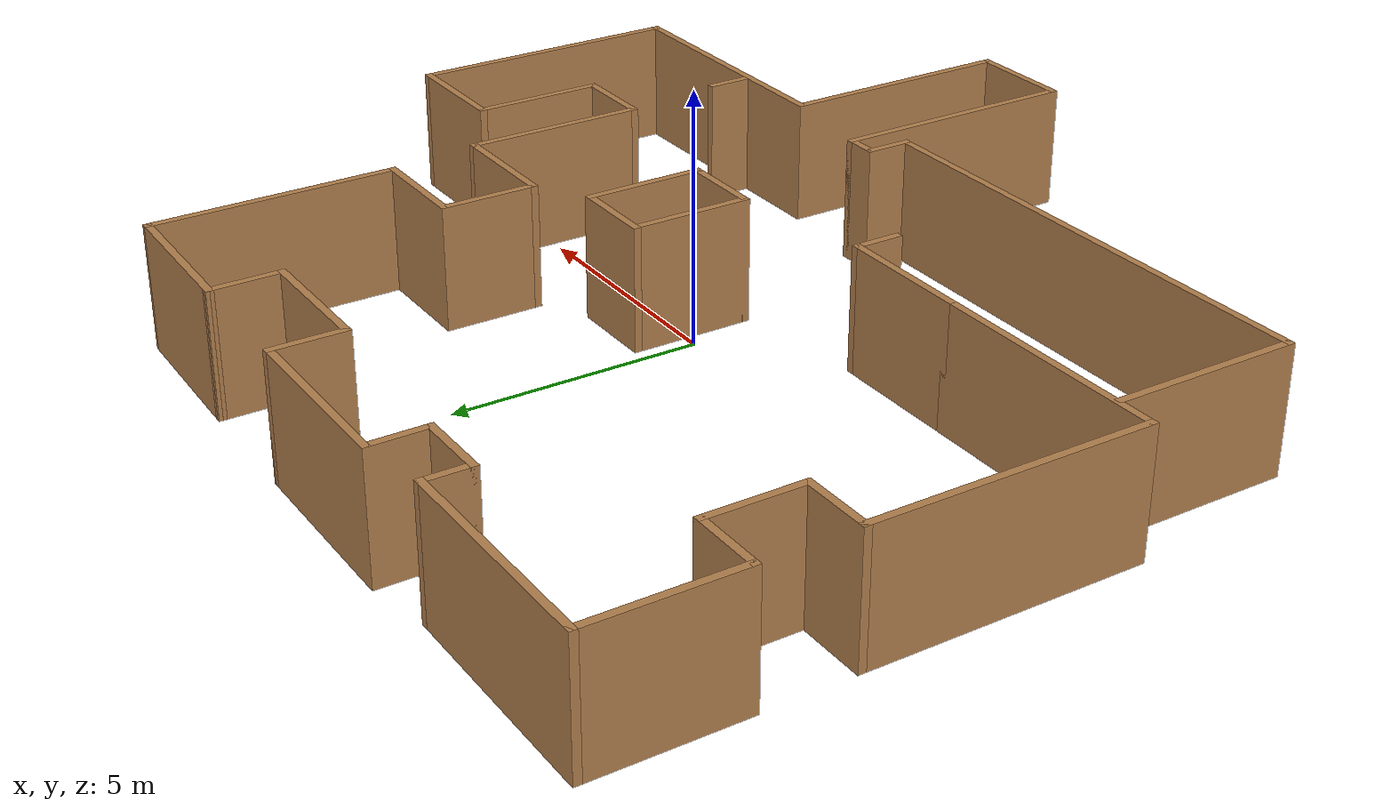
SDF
<?xml version='1.0'?>
<sdf version='1.6'>
  <model name='map_102'>
    <pose frame=''>-0.290953 -0.679758 0 0 -0 0</pose>
    <link name='Wall_21'>
      <collision name='Wall_21_Collision'>
        <geometry>
          <box>
            <size>2 0.15 2.5</size>
          </box>
        </geometry>
        <pose frame=''>0 0 1.25 0 -0 0</pose>
      </collision>
      <visual name='Wall_21_Visual'>
        <pose frame=''>0 0 1.25 0 -0 0</pose>
        <geometry>
          <box>
            <size>2 0.15 2.5</size>
          </box>
        </geometry>
        <material>
          <script>
            <uri>file://media/materials/scripts/gazebo.material</uri>
            <name>Gazebo/Wood</name>
          </script>
          <ambient>1 1 1 1</ambient>
        </material>
        <meta>
          <layer>0</layer>
        </meta>
      </visual>
      <pose frame=''>-8.23307 5.08367 0 0 -0 -1.5708</pose>
    </link>
    <link name='Wall_22'>
      <collision name='Wall_22_Collision'>
        <geometry>
          <box>
            <size>1.5 0.15 2.5</size>
          </box>
        </geometry>
        <pose frame=''>0 0 1.25 0 -0 0</pose>
      </collision>
      <visual name='Wall_22_Visual'>
        <pose frame=''>0 0 1.25 0 -0 0</pose>
        <geometry>
          <box>
            <size>1.5 0.15 2.5</size>
          </box>
        </geometry>
        <material>
          <script>
            <uri>file://media/materials/scripts/gazebo.material</uri>
            <name>Gazebo/Wood</name>
          </script>
          <ambient>1 1 1 1</ambient>
        </material>
        <meta>
          <layer>0</layer>
        </meta>
      </visual>
      <pose frame=''>-8.90807 4.15867 0 0 -0 3.14159</pose>
    </link>
    <link name='Wall_23'>
      <collision name='Wall_23_Collision'>
        <geometry>
          <box>
            <size>5.5 0.15 2.5</size>
          </box>
        </geometry>
        <pose frame=''>0 0 1.25 0 -0 0</pose>
      </collision>
      <visual name='Wall_23_Visual'>
        <pose frame=''>0 0 1.25 0 -0 0</pose>
        <geometry>
          <box>
            <size>5.5 0.15 2.5</size>
          </box>
        </geometry>
        <material>
          <script>
            <uri>file://media/materials/scripts/gazebo.material</uri>
            <name>Gazebo/Wood</name>
          </script>
          <ambient>1 1 1 1</ambient>
        </material>
        <meta>
          <layer>0</layer>
        </meta>
      </visual>
      <pose frame=''>-9.58307 1.48367 0 0 -0 -1.5708</pose>
    </link>
    <link name='Wall_24'>
      <collision name='Wall_24_Collision'>
        <geometry>
          <box>
            <size>5 0.15 2.5</size>
          </box>
        </geometry>
        <pose frame=''>0 0 1.25 0 -0 0</pose>
      </collision>
      <visual name='Wall_24_Visual'>
        <pose frame=''>0 0 1.25 0 -0 0</pose>
        <geometry>
          <box>
            <size>5 0.15 2.5</size>
          </box>
        </geometry>
        <material>
          <script>
            <uri>file://media/materials/scripts/gazebo.material</uri>
            <name>Gazebo/Wood</name>
          </script>
          <ambient>1 1 1 1</ambient>
        </material>
        <meta>
          <layer>0</layer>
        </meta>
      </visual>
      <pose frame=''>-7.15807 -1.19133 0 0 -0 0</pose>
    </link>
    <link name='Wall_28'>
      <collision name='Wall_28_Collision'>
        <geometry>
          <box>
            <size>3.75 0.15 2.5</size>
          </box>
        </geometry>
        <pose frame=''>0 0 1.25 0 -0 0</pose>
      </collision>
      <visual name='Wall_28_Visual'>
        <pose frame=''>0 0 1.25 0 -0 0</pose>
        <geometry>
          <box>
            <size>3.75 0.15 2.5</size>
          </box>
        </geometry>
        <material>
          <script>
            <uri>file://media/materials/scripts/gazebo.material</uri>
            <name>Gazebo/Wood</name>
          </script>
          <ambient>1 1 1 1</ambient>
        </material>
        <meta>
          <layer>0</layer>
        </meta>
      </visual>
      <pose frame=''>-8.81693 -3.06034 0 0 -0 -1.5708</pose>
    </link>
    <link name='Wall_38'>
      <collision name='Wall_38_Collision'>
        <geometry>
          <box>
            <size>10.25 0.15 2.5</size>
          </box>
        </geometry>
        <pose frame=''>0 0 1.25 0 -0 0</pose>
      </collision>
      <visual name='Wall_38_Visual'>
        <pose frame=''>0 0 1.25 0 -0 0</pose>
        <geometry>
          <box>
            <size>10.25 0.15 2.5</size>
          </box>
        </geometry>
        <material>
          <script>
            <uri>file://media/materials/scripts/gazebo.material</uri>
            <name>Gazebo/Wood</name>
          </script>
          <ambient>1 1 1 1</ambient>
        </material>
        <meta>
          <layer>0</layer>
        </meta>
      </visual>
      <pose frame=''>-3.76693 -4.86034 0 0 -0 0</pose>
    </link>
    <link name='Wall_39'>
      <collision name='Wall_39_Collision'>
        <geometry>
          <box>
            <size>1 0.15 2.5</size>
          </box>
        </geometry>
        <pose frame=''>0 0 1.25 0 -0 0</pose>
      </collision>
      <visual name='Wall_39_Visual'>
        <pose frame=''>0 0 1.25 0 -0 0</pose>
        <geometry>
          <box>
            <size>1 0.15 2.5</size>
          </box>
        </geometry>
        <material>
          <script>
            <uri>file://media/materials/scripts/gazebo.material</uri>
            <name>Gazebo/Wood</name>
          </script>
          <ambient>1 1 1 1</ambient>
        </material>
        <meta>
          <layer>0</layer>
        </meta>
      </visual>
      <pose frame=''>1.28307 -4.43534 0 0 -0 1.5708</pose>
    </link>
    <link name='Wall_40'>
      <collision name='Wall_40_Collision'>
        <geometry>
          <box>
            <size>0.75 0.15 2.5</size>
          </box>
        </geometry>
        <pose frame=''>0 0 1.25 0 -0 0</pose>
      </collision>
      <visual name='Wall_40_Visual'>
        <pose frame=''>0 0 1.25 0 -0 0</pose>
        <geometry>
          <box>
            <size>0.75 0.15 2.5</size>
          </box>
        </geometry>
        <material>
          <script>
            <uri>file://media/materials/scripts/gazebo.material</uri>
            <name>Gazebo/Wood</name>
          </script>
          <ambient>1 1 1 1</ambient>
        </material>
        <meta>
          <layer>0</layer>
        </meta>
      </visual>
      <pose frame=''>1.58307 -4.01034 0 0 -0 0</pose>
    </link>
    <link name='Wall_41'>
      <collision name='Wall_41_Collision'>
        <geometry>
          <box>
            <size>5.25 0.15 2.5</size>
          </box>
        </geometry>
        <pose frame=''>0 0 1.25 0 -0 0</pose>
      </collision>
      <visual name='Wall_41_Visual'>
        <pose frame=''>0 0 1.25 0 -0 0</pose>
        <geometry>
          <box>
            <size>5.25 0.15 2.5</size>
          </box>
        </geometry>
        <material>
          <script>
            <uri>file://media/materials/scripts/gazebo.material</uri>
            <name>Gazebo/Wood</name>
          </script>
          <ambient>1 1 1 1</ambient>
        </material>
        <meta>
          <layer>0</layer>
        </meta>
      </visual>
      <pose frame=''>1.88307 -6.56034 0 0 -0 -1.5708</pose>
    </link>
    <link name='Wall_42'>
      <collision name='Wall_42_Collision'>
        <geometry>
          <box>
            <size>2.25 0.15 2.5</size>
          </box>
        </geometry>
        <pose frame=''>0 0 1.25 0 -0 0</pose>
      </collision>
      <visual name='Wall_42_Visual'>
        <pose frame=''>0 0 1.25 0 -0 0</pose>
        <geometry>
          <box>
            <size>2.25 0.15 2.5</size>
          </box>
        </geometry>
        <material>
          <script>
            <uri>file://media/materials/scripts/gazebo.material</uri>
            <name>Gazebo/Wood</name>
          </script>
          <ambient>1 1 1 1</ambient>
        </material>
        <meta>
          <layer>0</layer>
        </meta>
      </visual>
      <pose frame=''>2.93307 -9.11034 0 0 -0 0</pose>
    </link>
    <link name='Wall_43'>
      <collision name='Wall_43_Collision'>
        <geometry>
          <box>
            <size>5 0.15 2.5</size>
          </box>
        </geometry>
        <pose frame=''>0 0 1.25 0 -0 0</pose>
      </collision>
      <visual name='Wall_43_Visual'>
        <pose frame=''>0 0 1.25 0 -0 0</pose>
        <geometry>
          <box>
            <size>5 0.15 2.5</size>
          </box>
        </geometry>
        <material>
          <script>
            <uri>file://media/materials/scripts/gazebo.material</uri>
            <name>Gazebo/Wood</name>
          </script>
          <ambient>1 1 1 1</ambient>
        </material>
        <meta>
          <layer>0</layer>
        </meta>
      </visual>
      <pose frame=''>3.98307 -6.68534 0 0 -0 1.5708</pose>
    </link>
    <link name='Wall_44'>
      <collision name='Wall_44_Collision'>
        <geometry>
          <box>
            <size>5.75 0.15 2.5</size>
          </box>
        </geometry>
        <pose frame=''>0 0 1.25 0 -0 0</pose>
      </collision>
      <visual name='Wall_44_Visual'>
        <pose frame=''>0 0 1.25 0 -0 0</pose>
        <geometry>
          <box>
            <size>5.75 0.15 2.5</size>
          </box>
        </geometry>
        <material>
          <script>
            <uri>file://media/materials/scripts/gazebo.material</uri>
            <name>Gazebo/Wood</name>
          </script>
          <ambient>1 1 1 1</ambient>
        </material>
        <meta>
          <layer>0</layer>
        </meta>
      </visual>
      <pose frame=''>6.78307 -4.26034 0 0 -0 0</pose>
    </link>
    <link name='Wall_46'>
      <collision name='Wall_46_Collision'>
        <geometry>
          <box>
            <size>5.75 0.15 2.5</size>
          </box>
        </geometry>
        <pose frame=''>0 0 1.25 0 -0 0</pose>
      </collision>
      <visual name='Wall_46_Visual'>
        <pose frame=''>0 0 1.25 0 -0 0</pose>
        <geometry>
          <box>
            <size>5.75 0.15 2.5</size>
          </box>
        </geometry>
        <material>
          <script>
            <uri>file://media/materials/scripts/gazebo.material</uri>
            <name>Gazebo/Wood</name>
          </script>
          <ambient>1 1 1 1</ambient>
        </material>
        <meta>
          <layer>0</layer>
        </meta>
      </visual>
      <pose frame=''>9.58307 -1.46034 0 0 -0 1.5708</pose>
    </link>
    <link name='Wall_47'>
      <collision name='Wall_47_Collision'>
        <geometry>
          <box>
            <size>2.5 0.15 2.5</size>
          </box>
        </geometry>
        <pose frame=''>0 0 1.25 0 -0 0</pose>
      </collision>
      <visual name='Wall_47_Visual'>
        <pose frame=''>0 0 1.25 0 -0 0</pose>
        <geometry>
          <box>
            <size>2.5 0.15 2.5</size>
          </box>
        </geometry>
        <material>
          <script>
            <uri>file://media/materials/scripts/gazebo.material</uri>
            <name>Gazebo/Wood</name>
          </script>
          <ambient>1 1 1 1</ambient>
        </material>
        <meta>
          <layer>0</layer>
        </meta>
      </visual>
      <pose frame=''>8.40807 1.33966 0 0 -0 3.14159</pose>
    </link>
    <link name='Wall_48'>
      <collision name='Wall_48_Collision'>
        <geometry>
          <box>
            <size>2.75 0.15 2.5</size>
          </box>
        </geometry>
        <pose frame=''>0 0 1.25 0 -0 0</pose>
      </collision>
      <visual name='Wall_48_Visual'>
        <pose frame=''>0 0 1.25 0 -0 0</pose>
        <geometry>
          <box>
            <size>2.75 0.15 2.5</size>
          </box>
        </geometry>
        <material>
          <script>
            <uri>file://media/materials/scripts/gazebo.material</uri>
            <name>Gazebo/Wood</name>
          </script>
          <ambient>1 1 1 1</ambient>
        </material>
        <meta>
          <layer>0</layer>
        </meta>
      </visual>
      <pose frame=''>7.23307 0.039658 0 0 -0 -1.5708</pose>
    </link>
    <link name='Wall_49'>
      <collision name='Wall_49_Collision'>
        <geometry>
          <box>
            <size>1.75 0.15 2.5</size>
          </box>
        </geometry>
        <pose frame=''>0 0 1.25 0 -0 0</pose>
      </collision>
      <visual name='Wall_49_Visual'>
        <pose frame=''>0 0 1.25 0 -0 0</pose>
        <geometry>
          <box>
            <size>1.75 0.15 2.5</size>
          </box>
        </geometry>
        <material>
          <script>
            <uri>file://media/materials/scripts/gazebo.material</uri>
            <name>Gazebo/Wood</name>
          </script>
          <ambient>1 1 1 1</ambient>
        </material>
        <meta>
          <layer>0</layer>
        </meta>
      </visual>
      <pose frame=''>6.43307 -1.26034 0 0 -0 3.14159</pose>
    </link>
    <link name='Wall_50'>
      <collision name='Wall_50_Collision'>
        <geometry>
          <box>
            <size>3.75 0.15 2.5</size>
          </box>
        </geometry>
        <pose frame=''>0 0 1.25 0 -0 0</pose>
      </collision>
      <visual name='Wall_50_Visual'>
        <pose frame=''>0 0 1.25 0 -0 0</pose>
        <geometry>
          <box>
            <size>3.75 0.15 2.5</size>
          </box>
        </geometry>
        <material>
          <script>
            <uri>file://media/materials/scripts/gazebo.material</uri>
            <name>Gazebo/Wood</name>
          </script>
          <ambient>1 1 1 1</ambient>
        </material>
        <meta>
          <layer>0</layer>
        </meta>
      </visual>
      <pose frame=''>5.63307 0.539658 0 0 -0 1.5708</pose>
    </link>
    <link name='Wall_57'>
      <collision name='Wall_57_Collision'>
        <geometry>
          <box>
            <size>5 0.15 2.5</size>
          </box>
        </geometry>
        <pose frame=''>0 0 1.25 0 -0 0</pose>
      </collision>
      <visual name='Wall_57_Visual'>
        <pose frame=''>0 0 1.25 0 -0 0</pose>
        <geometry>
          <box>
            <size>5 0.15 2.5</size>
          </box>
        </geometry>
        <material>
          <script>
            <uri>file://media/materials/scripts/gazebo.material</uri>
            <name>Gazebo/Wood</name>
          </script>
          <ambient>1 1 1 1</ambient>
        </material>
        <meta>
          <layer>0</layer>
        </meta>
      </visual>
      <pose frame=''>5.38307 6.61466 0 0 -0 1.5708</pose>
    </link>
    <link name='Wall_59'>
      <collision name='Wall_59_Collision'>
        <geometry>
          <box>
            <size>4.5 0.15 2.5</size>
          </box>
        </geometry>
        <pose frame=''>0 0 1.25 0 -0 0</pose>
      </collision>
      <visual name='Wall_59_Visual'>
        <pose frame=''>0 0 1.25 0 -0 0</pose>
        <geometry>
          <box>
            <size>4.5 0.15 2.5</size>
          </box>
        </geometry>
        <material>
          <script>
            <uri>file://media/materials/scripts/gazebo.material</uri>
            <name>Gazebo/Wood</name>
          </script>
          <ambient>1 1 1 1</ambient>
        </material>
        <meta>
          <layer>0</layer>
        </meta>
      </visual>
      <pose frame=''>-7.40807 8.85867 0 0 -0 0</pose>
    </link>
    <link name='Wall_60'>
      <collision name='Wall_60_Collision'>
        <geometry>
          <box>
            <size>1 0.15 2.5</size>
          </box>
        </geometry>
        <pose frame=''>0 0 1.25 0 -0 0</pose>
      </collision>
      <visual name='Wall_60_Visual'>
        <pose frame=''>0 0 1.25 0 -0 0</pose>
        <geometry>
          <box>
            <size>1 0.15 2.5</size>
          </box>
        </geometry>
        <material>
          <script>
            <uri>file://media/materials/scripts/gazebo.material</uri>
            <name>Gazebo/Wood</name>
          </script>
          <ambient>1 1 1 1</ambient>
        </material>
        <meta>
          <layer>0</layer>
        </meta>
      </visual>
      <pose frame=''>-5.23307 8.43367 0 0 -0 -1.5708</pose>
    </link>
    <link name='Wall_61'>
      <collision name='Wall_61_Collision'>
        <geometry>
          <box>
            <size>1.5 0.15 2.5</size>
          </box>
        </geometry>
        <pose frame=''>0 0 1.25 0 -0 0</pose>
      </collision>
      <visual name='Wall_61_Visual'>
        <pose frame=''>0 0 1.25 0 -0 0</pose>
        <geometry>
          <box>
            <size>1.5 0.15 2.5</size>
          </box>
        </geometry>
        <material>
          <script>
            <uri>file://media/materials/scripts/gazebo.material</uri>
            <name>Gazebo/Wood</name>
          </script>
          <ambient>1 1 1 1</ambient>
        </material>
        <meta>
          <layer>0</layer>
        </meta>
      </visual>
      <pose frame=''>-4.55807 8.00867 0 0 -0 0</pose>
    </link>
    <link name='Wall_62'>
      <collision name='Wall_62_Collision'>
        <geometry>
          <box>
            <size>1.25 0.15 2.5</size>
          </box>
        </geometry>
        <pose frame=''>0 0 1.25 0 -0 0</pose>
      </collision>
      <visual name='Wall_62_Visual'>
        <pose frame=''>0 0 1.25 0 -0 0</pose>
        <geometry>
          <box>
            <size>1.25 0.15 2.5</size>
          </box>
        </geometry>
        <material>
          <script>
            <uri>file://media/materials/scripts/gazebo.material</uri>
            <name>Gazebo/Wood</name>
          </script>
          <ambient>1 1 1 1</ambient>
        </material>
        <meta>
          <layer>0</layer>
        </meta>
      </visual>
      <pose frame=''>-3.88307 8.55867 0 0 -0 1.5708</pose>
    </link>
    <link name='Wall_63'>
      <collision name='Wall_63_Collision'>
        <geometry>
          <box>
            <size>3.75 0.15 2.5</size>
          </box>
        </geometry>
        <pose frame=''>0 0 1.25 0 -0 0</pose>
      </collision>
      <visual name='Wall_63_Visual'>
        <pose frame=''>0 0 1.25 0 -0 0</pose>
        <geometry>
          <box>
            <size>3.75 0.15 2.5</size>
          </box>
        </geometry>
        <material>
          <script>
            <uri>file://media/materials/scripts/gazebo.material</uri>
            <name>Gazebo/Wood</name>
          </script>
          <ambient>1 1 1 1</ambient>
        </material>
        <meta>
          <layer>0</layer>
        </meta>
      </visual>
      <pose frame=''>-2.08307 9.10867 0 0 -0 0</pose>
    </link>
    <link name='Wall_64'>
      <collision name='Wall_64_Collision'>
        <geometry>
          <box>
            <size>1.5 0.15 2.5</size>
          </box>
        </geometry>
        <pose frame=''>0 0 1.25 0 -0 0</pose>
      </collision>
      <visual name='Wall_64_Visual'>
        <pose frame=''>0 0 1.25 0 -0 0</pose>
        <geometry>
          <box>
            <size>1.5 0.15 2.5</size>
          </box>
        </geometry>
        <material>
          <script>
            <uri>file://media/materials/scripts/gazebo.material</uri>
            <name>Gazebo/Wood</name>
          </script>
          <ambient>1 1 1 1</ambient>
        </material>
        <meta>
          <layer>0</layer>
        </meta>
      </visual>
      <pose frame=''>-0.28307 8.43367 0 0 -0 -1.5708</pose>
    </link>
    <link name='Wall_65'>
      <collision name='Wall_65_Collision'>
        <geometry>
          <box>
            <size>2.75 0.15 2.5</size>
          </box>
        </geometry>
        <pose frame=''>0 0 1.25 0 -0 0</pose>
      </collision>
      <visual name='Wall_65_Visual'>
        <pose frame=''>0 0 1.25 0 -0 0</pose>
        <geometry>
          <box>
            <size>2.75 0.15 2.5</size>
          </box>
        </geometry>
        <material>
          <script>
            <uri>file://media/materials/scripts/gazebo.material</uri>
            <name>Gazebo/Wood</name>
          </script>
          <ambient>1 1 1 1</ambient>
        </material>
        <meta>
          <layer>0</layer>
        </meta>
      </visual>
      <pose frame=''>1.01693 7.75867 0 0 -0 0</pose>
    </link>
    <link name='Wall_66'>
      <collision name='Wall_66_Collision'>
        <geometry>
          <box>
            <size>1.5 0.15 2.5</size>
          </box>
        </geometry>
        <pose frame=''>0 0 1.25 0 -0 0</pose>
      </collision>
      <visual name='Wall_66_Visual'>
        <pose frame=''>0 0 1.25 0 -0 0</pose>
        <geometry>
          <box>
            <size>1.5 0.15 2.5</size>
          </box>
        </geometry>
        <material>
          <script>
            <uri>file://media/materials/scripts/gazebo.material</uri>
            <name>Gazebo/Wood</name>
          </script>
          <ambient>1 1 1 1</ambient>
        </material>
        <meta>
          <layer>0</layer>
        </meta>
      </visual>
      <pose frame=''>2.31693 8.43367 0 0 -0 1.5708</pose>
    </link>
    <link name='Wall_67'>
      <collision name='Wall_67_Collision'>
        <geometry>
          <box>
            <size>3.21692 0.15 2.5</size>
          </box>
        </geometry>
        <pose frame=''>0 0 1.25 0 -0 0</pose>
      </collision>
      <visual name='Wall_67_Visual'>
        <pose frame=''>0 0 1.25 0 -0 0</pose>
        <geometry>
          <box>
            <size>3.21692 0.15 2.5</size>
          </box>
        </geometry>
        <material>
          <script>
            <uri>file://media/materials/scripts/gazebo.material</uri>
            <name>Gazebo/Wood</name>
          </script>
          <ambient>1 1 1 1</ambient>
        </material>
        <meta>
          <layer>0</layer>
        </meta>
      </visual>
      <pose frame=''>3.85 9.07417 0 0 -0 -0.022505</pose>
    </link>
    <link name='Wall_69'>
      <collision name='Wall_69_Collision'>
        <geometry>
          <box>
            <size>2.5 0.15 2.5</size>
          </box>
        </geometry>
        <pose frame=''>0 0 1.25 0 -0 0</pose>
      </collision>
      <visual name='Wall_69_Visual'>
        <pose frame=''>0 0 1.25 0 -0 0</pose>
        <geometry>
          <box>
            <size>2.5 0.15 2.5</size>
          </box>
        </geometry>
        <material>
          <script>
            <uri>file://media/materials/scripts/gazebo.material</uri>
            <name>Gazebo/Wood</name>
          </script>
          <ambient>1 1 1 1</ambient>
        </material>
        <meta>
          <layer>0</layer>
        </meta>
      </visual>
      <pose frame=''>4.45807 2.33966 0 0 -0 3.14159</pose>
    </link>
    <link name='Wall_7'>
      <collision name='Wall_7_Collision'>
        <geometry>
          <box>
            <size>3 0.15 2.5</size>
          </box>
        </geometry>
        <pose frame=''>0 0 1.25 0 -0 0</pose>
      </collision>
      <visual name='Wall_7_Visual'>
        <pose frame=''>0 0 1.25 0 -0 0</pose>
        <geometry>
          <box>
            <size>3 0.15 2.5</size>
          </box>
        </geometry>
        <material>
          <script>
            <uri>file://media/materials/scripts/gazebo.material</uri>
            <name>Gazebo/Wood</name>
          </script>
          <ambient>1 1 1 1</ambient>
        </material>
        <meta>
          <layer>0</layer>
        </meta>
      </visual>
      <pose frame=''>-9.58307 7.43367 0 0 -0 -1.5708</pose>
    </link>
    <link name='Wall_70'>
      <collision name='Wall_70_Collision'>
        <geometry>
          <box>
            <size>2 0.15 2.5</size>
          </box>
        </geometry>
        <pose frame=''>0 0 1.25 0 -0 0</pose>
      </collision>
      <visual name='Wall_70_Visual'>
        <pose frame=''>0 0 1.25 0 -0 0</pose>
        <geometry>
          <box>
            <size>2 0.15 2.5</size>
          </box>
        </geometry>
        <material>
          <script>
            <uri>file://media/materials/scripts/gazebo.material</uri>
            <name>Gazebo/Wood</name>
          </script>
          <ambient>1 1 1 1</ambient>
        </material>
        <meta>
          <layer>0</layer>
        </meta>
      </visual>
      <pose frame=''>3.28307 3.26466 0 0 -0 1.5708</pose>
    </link>
    <link name='Wall_72'>
      <collision name='Wall_72_Collision'>
        <geometry>
          <box>
            <size>2.25 0.15 2.5</size>
          </box>
        </geometry>
        <pose frame=''>0 0 1.25 0 -0 0</pose>
      </collision>
      <visual name='Wall_72_Visual'>
        <pose frame=''>0 0 1.25 0 -0 0</pose>
        <geometry>
          <box>
            <size>2.25 0.15 2.5</size>
          </box>
        </geometry>
        <material>
          <script>
            <uri>file://media/materials/scripts/gazebo.material</uri>
            <name>Gazebo/Wood</name>
          </script>
          <ambient>1 1 1 1</ambient>
        </material>
        <meta>
          <layer>0</layer>
        </meta>
      </visual>
      <pose frame=''>4.33307 4.18966 0 0 -0 3.14159</pose>
    </link>
    <link name='Wall_74'>
      <collision name='Wall_74_Collision'>
        <geometry>
          <box>
            <size>2.5 0.15 2.5</size>
          </box>
        </geometry>
        <pose frame=''>0 0 1.25 0 -0 0</pose>
      </collision>
      <visual name='Wall_74_Visual'>
        <pose frame=''>0 0 1.25 0 -0 0</pose>
        <geometry>
          <box>
            <size>2.5 0.15 2.5</size>
          </box>
        </geometry>
        <material>
          <script>
            <uri>file://media/materials/scripts/gazebo.material</uri>
            <name>Gazebo/Wood</name>
          </script>
          <ambient>1 1 1 1</ambient>
        </material>
        <meta>
          <layer>0</layer>
        </meta>
      </visual>
      <pose frame=''>0.658363 0.517996 0 0 -0 -1.5708</pose>
    </link>
    <link name='Wall_75'>
      <collision name='Wall_75_Collision'>
        <geometry>
          <box>
            <size>1.75 0.15 2.5</size>
          </box>
        </geometry>
        <pose frame=''>0 0 1.25 0 -0 0</pose>
      </collision>
      <visual name='Wall_75_Visual'>
        <pose frame=''>0 0 1.25 0 -0 0</pose>
        <geometry>
          <box>
            <size>1.75 0.15 2.5</size>
          </box>
        </geometry>
        <material>
          <script>
            <uri>file://media/materials/scripts/gazebo.material</uri>
            <name>Gazebo/Wood</name>
          </script>
          <ambient>1 1 1 1</ambient>
        </material>
        <meta>
          <layer>0</layer>
        </meta>
      </visual>
      <pose frame=''>1.45836 -0.657004 0 0 -0 0</pose>
    </link>
    <link name='Wall_76'>
      <collision name='Wall_76_Collision'>
        <geometry>
          <box>
            <size>2.5 0.15 2.5</size>
          </box>
        </geometry>
        <pose frame=''>0 0 1.25 0 -0 0</pose>
      </collision>
      <visual name='Wall_76_Visual'>
        <pose frame=''>0 0 1.25 0 -0 0</pose>
        <geometry>
          <box>
            <size>2.5 0.15 2.5</size>
          </box>
        </geometry>
        <material>
          <script>
            <uri>file://media/materials/scripts/gazebo.material</uri>
            <name>Gazebo/Wood</name>
          </script>
          <ambient>1 1 1 1</ambient>
        </material>
        <meta>
          <layer>0</layer>
        </meta>
      </visual>
      <pose frame=''>2.25836 0.517996 0 0 -0 1.5708</pose>
    </link>
    <link name='Wall_77'>
      <collision name='Wall_77_Collision'>
        <geometry>
          <box>
            <size>1.75 0.15 2.5</size>
          </box>
        </geometry>
        <pose frame=''>0 0 1.25 0 -0 0</pose>
      </collision>
      <visual name='Wall_77_Visual'>
        <pose frame=''>0 0 1.25 0 -0 0</pose>
        <geometry>
          <box>
            <size>1.75 0.15 2.5</size>
          </box>
        </geometry>
        <material>
          <script>
            <uri>file://media/materials/scripts/gazebo.material</uri>
            <name>Gazebo/Wood</name>
          </script>
          <ambient>1 1 1 1</ambient>
        </material>
        <meta>
          <layer>0</layer>
        </meta>
      </visual>
      <pose frame=''>1.45836 1.693 0 0 -0 3.14159</pose>
    </link>
    <link name='Wall_79'>
      <collision name='Wall_79_Collision'>
        <geometry>
          <box>
            <size>2.75 0.15 2.5</size>
          </box>
        </geometry>
        <pose frame=''>0 0 1.25 0 -0 0</pose>
      </collision>
      <visual name='Wall_79_Visual'>
        <pose frame=''>0 0 1.25 0 -0 0</pose>
        <geometry>
          <box>
            <size>2.75 0.15 2.5</size>
          </box>
        </geometry>
        <material>
          <script>
            <uri>file://media/materials/scripts/gazebo.material</uri>
            <name>Gazebo/Wood</name>
          </script>
          <ambient>1 1 1 1</ambient>
        </material>
        <meta>
          <layer>0</layer>
        </meta>
      </visual>
      <pose frame=''>-3.43307 -1.19133 0 0 -0 0</pose>
    </link>
    <link name='Wall_8'>
      <collision name='Wall_8_Collision'>
        <geometry>
          <box>
            <size>1.5 0.15 2.5</size>
          </box>
        </geometry>
        <pose frame=''>0 0 1.25 0 -0 0</pose>
      </collision>
      <visual name='Wall_8_Visual'>
        <pose frame=''>0 0 1.25 0 -0 0</pose>
        <geometry>
          <box>
            <size>1.5 0.15 2.5</size>
          </box>
        </geometry>
        <material>
          <script>
            <uri>file://media/materials/scripts/gazebo.material</uri>
            <name>Gazebo/Wood</name>
          </script>
          <ambient>1 1 1 1</ambient>
        </material>
        <meta>
          <layer>0</layer>
        </meta>
      </visual>
      <pose frame=''>-8.90807 6.00867 0 0 -0 0</pose>
    </link>
    <link name='Wall_80'>
      <collision name='Wall_80_Collision'>
        <geometry>
          <box>
            <size>1 0.15 2.5</size>
          </box>
        </geometry>
        <pose frame=''>0 0 1.25 0 -0 0</pose>
      </collision>
      <visual name='Wall_80_Visual'>
        <pose frame=''>0 0 1.25 0 -0 0</pose>
        <geometry>
          <box>
            <size>1 0.15 2.5</size>
          </box>
        </geometry>
        <material>
          <script>
            <uri>file://media/materials/scripts/gazebo.material</uri>
            <name>Gazebo/Wood</name>
          </script>
          <ambient>1 1 1 1</ambient>
        </material>
        <meta>
          <layer>0</layer>
        </meta>
      </visual>
      <pose frame=''>-2.13307 -1.61633 0 0 -0 -1.5708</pose>
    </link>
    <link name='Wall_83'>
      <collision name='Wall_83_Collision'>
        <geometry>
          <box>
            <size>1 0.15 2.5</size>
          </box>
        </geometry>
        <pose frame=''>0 0 1.25 0 -0 0</pose>
      </collision>
      <visual name='Wall_83_Visual'>
        <pose frame=''>0 0 1.25 0 -0 0</pose>
        <geometry>
          <box>
            <size>1 0.15 2.5</size>
          </box>
        </geometry>
        <material>
          <script>
            <uri>file://media/materials/scripts/gazebo.material</uri>
            <name>Gazebo/Wood</name>
          </script>
          <ambient>1 1 1 1</ambient>
        </material>
        <meta>
          <layer>0</layer>
        </meta>
      </visual>
      <pose frame=''>5.88823 -3.78868 0 0 -0 1.5708</pose>
    </link>
    <static>1</static>
  </model>
</sdf>
